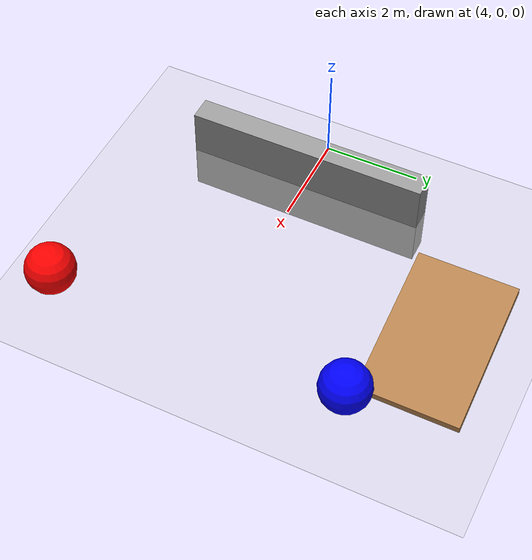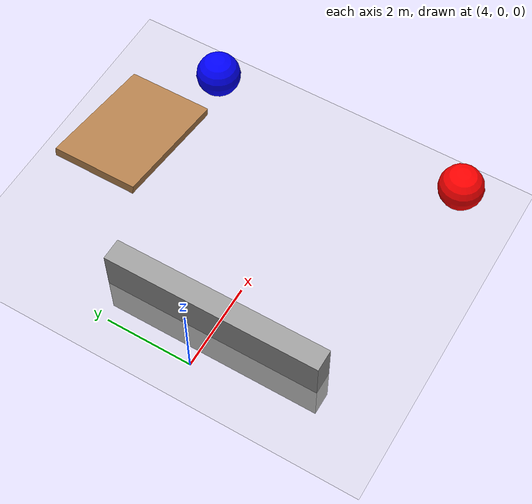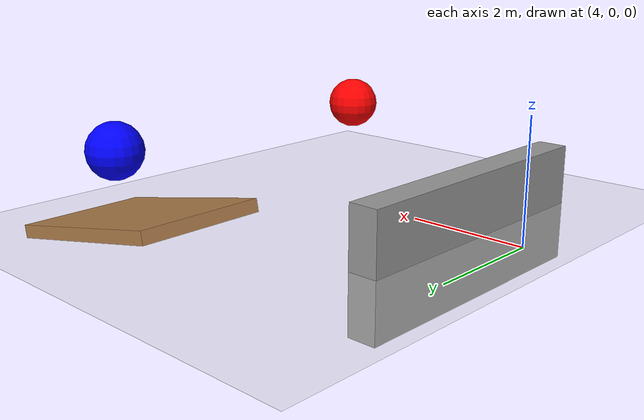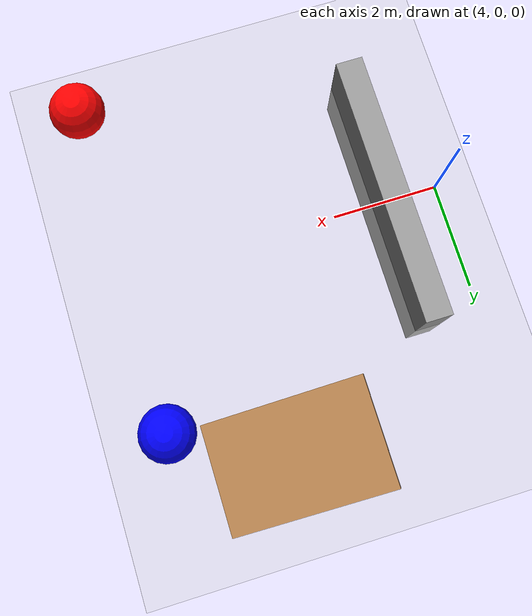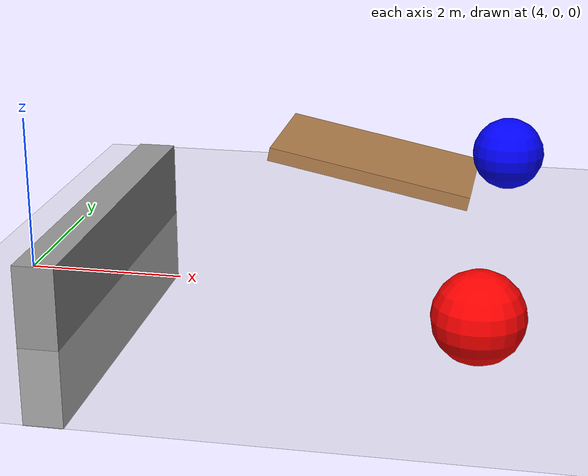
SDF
<?xml version="1.0" ?>
<sdf version="1.6">
  <world name="gokboru_tactical_arena">
    <!-- Base Physics and Lighting -->
    <include>
      <uri>model://sun</uri>
    </include>
    <include>
      <uri>model://ground_plane</uri>
    </include>

    <!-- Custom Arena Elements for UGV Testing -->

    <!-- Obstacle 1: Concrete Wall -->
    <model name="concrete_wall">
      <pose>5 0 0 0 0 0</pose>
      <static>true</static>
      <link name="link">
        <collision name="collision">
          <geometry>
            <box>
              <size>0.5 5 2</size>
            </box>
          </geometry>
        </collision>
        <visual name="visual">
          <geometry>
            <box>
              <size>0.5 5 2</size>
            </box>
          </geometry>
          <material>
            <script>
              <name>Gazebo/Grey</name>
              <uri>file://media/materials/scripts/gazebo.material</uri>
            </script>
          </material>
        </visual>
      </link>
    </model>

    <!-- Obstacle 2: Sloped Terrain (Rampa) -->
    <model name="tactical_ramp">
      <pose>8 4 0.5 0 0.2 0</pose>
      <static>true</static>
      <link name="link">
        <collision name="collision">
          <geometry>
            <box>
              <size>3 2 0.2</size>
            </box>
          </geometry>
        </collision>
        <visual name="visual">
          <geometry>
            <box>
              <size>3 2 0.2</size>
            </box>
          </geometry>
          <material>
            <script>
              <name>Gazebo/WoodFloor</name>
              <uri>file://media/materials/scripts/gazebo.material</uri>
            </script>
          </material>
        </visual>
      </link>
    </model>

    <!-- Target Area Simulation for Computer Vision Recognition -->
    <model name="vision_target_red">
      <pose>10 -3 1 0 0 0</pose>
      <static>true</static>
      <link name="link">
        <collision name="collision">
          <geometry><sphere><radius>0.5</radius></sphere></geometry>
        </collision>
        <visual name="visual">
          <geometry><sphere><radius>0.5</radius></sphere></geometry>
          <material>
            <ambient>1 0 0 1</ambient>
            <diffuse>1 0 0 1</diffuse>
          </material>
        </visual>
      </link>
    </model>

    <model name="vision_target_blue">
      <pose>10 3 1 0 0 0</pose>
      <static>true</static>
      <link name="link">
        <collision name="collision">
          <geometry><sphere><radius>0.5</radius></sphere></geometry>
        </collision>
        <visual name="visual">
          <geometry><sphere><radius>0.5</radius></sphere></geometry>
          <material>
            <ambient>0 0 1 1</ambient>
            <diffuse>0 0 1 1</diffuse>
          </material>
        </visual>
      </link>
    </model>

  </world>
</sdf>
